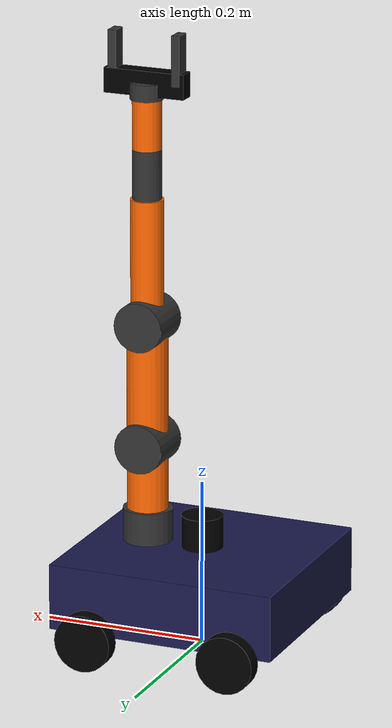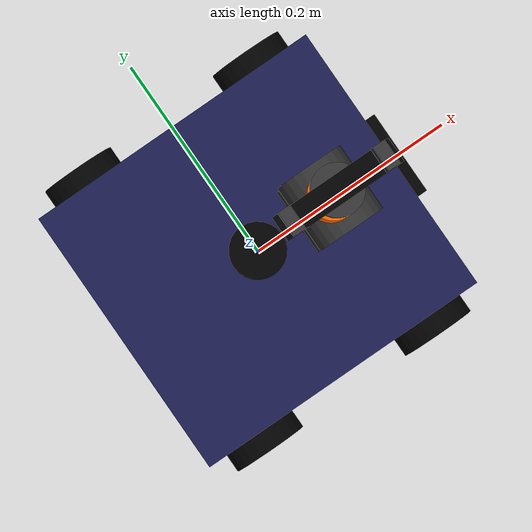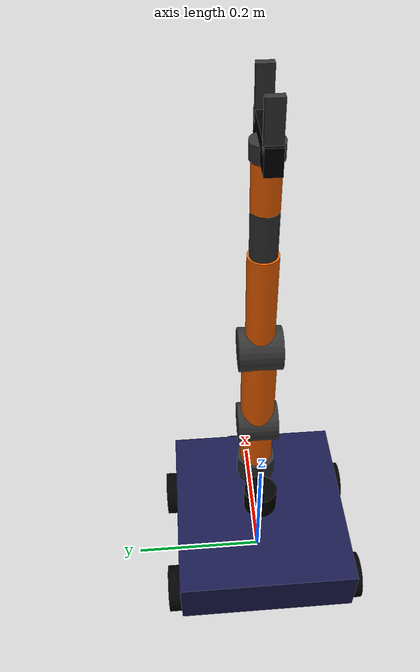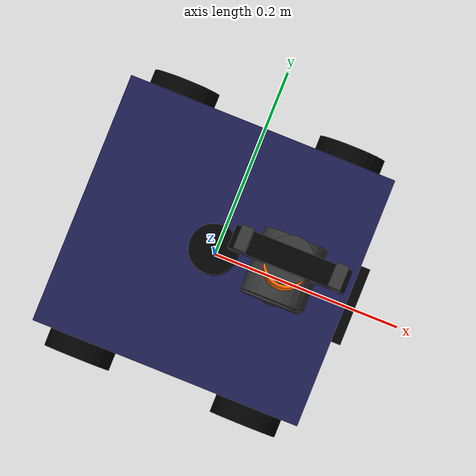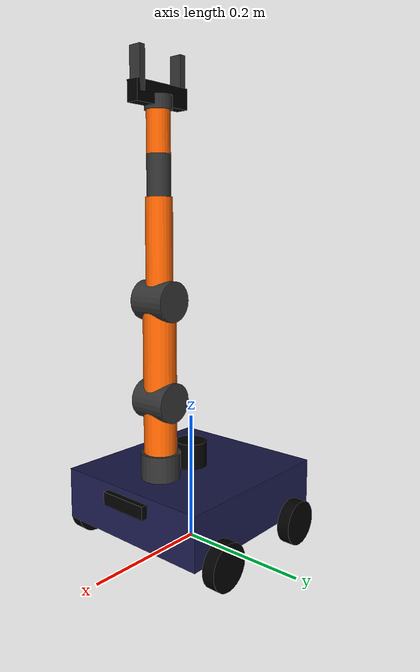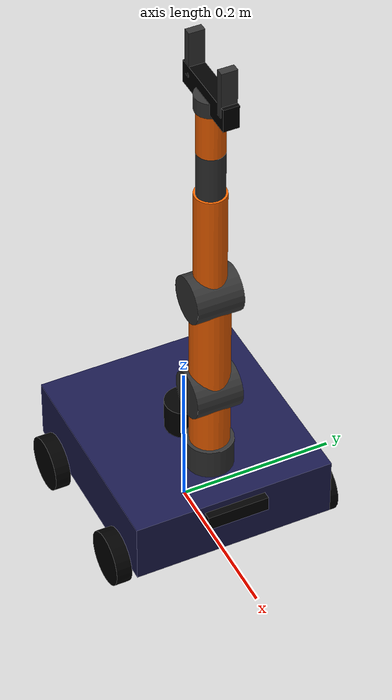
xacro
<?xml version="1.0"?>
<robot xmlns:xacro="http://www.ros.org/wiki/xacro" name="my_mobile_manipulator">
    <xacro:arg name="initial_positions_file" default="initial_positions.yaml" />

    <!-- Import my_mobile_manipulator urdf file -->
    <xacro:include filename="$(find final_assignment_pkg)/urdf/robot.urdf.xacro" />

    <!-- Import control_xacro -->
    <xacro:include filename="my_mobile_manipulator.ros2_control.xacro" />

    <xacro:my_mobile_manipulator_ros2_control name="FakeSystem" initial_positions_file="$(arg initial_positions_file)"/>

</robot>

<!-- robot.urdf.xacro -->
<robot name="my_mobile_manipulator" xmlns:xacro="http://ros.org/wiki/xacro">

  <xacro:property name="base_length" value="0.28"/>
  <xacro:property name="base_width" value="0.26"/>
  <xacro:property name="base_height" value="0.08"/>

  <xacro:property name="wheel_radius" value="0.035"/>
  <xacro:property name="wheel_width" value="0.02"/>

  <xacro:property name="wheel_y_offset" value="${base_width/2 + wheel_width/2}"/>
  <xacro:property name="wheel_x_offset" value="${base_length/2 - 0.05}"/>

  <xacro:property name="arm_radius" value="0.025"/>
  <xacro:property name="joint_radius" value="0.03"/>
  <xacro:property name="link_1_len" value="0.15"/>
  <xacro:property name="link_2_len" value="0.15"/>

  <xacro:macro name="box_inertial" params="m x y z">
    <inertial>
      <mass value="${m}"/>
      <inertia ixx="${m*(y*y+z*z)/12}" ixy="0" ixz="0" iyy="${m*(x*x+z*z)/12}" iyz="0" izz="${m*(x*x+y*y)/12}"/>
    </inertial>
  </xacro:macro>
  <xacro:macro name="cylinder_inertial" params="m r h">
    <inertial>
      <mass value="${m}"/>
      <inertia ixx="${m*(3*r*r+h*h)/12}" ixy="0" ixz="0" iyy="${m*(3*r*r+h*h)/12}" iyz="0" izz="${m*r*r/2}"/>
    </inertial>
  </xacro:macro>

  <material name="industrial_blue"><color rgba="0.1 0.1 0.3 1"/></material>
  <material name="industrial_grey"><color rgba="0.2 0.2 0.2 1"/></material>
  <material name="industrial_orange"><color rgba="1.0 0.4 0.0 1"/></material>
  <material name="black"><color rgba="0 0 0 1"/></material>

  <link name="base_footprint"/>

  <joint name="base_joint" type="fixed">
    <parent link="base_footprint"/>
    <child link="base_link"/>
    <origin xyz="0 0 ${wheel_radius + 0.005}" rpy="0 0 0"/>
  </joint>

  <link name="base_link">
    <visual>
      <origin xyz="0 0 ${base_height/2}" rpy="0 0 0"/>
      <geometry>
        <box size="${base_length} ${base_width} ${base_height}"/>
      </geometry>
      <material name="industrial_blue"/>
    </visual>
    <collision>
      <origin xyz="0 0 ${base_height/2}" rpy="0 0 0"/>
      <geometry>
        <box size="${base_length} ${base_width} ${base_height}"/>
      </geometry>
    </collision>
    <xacro:box_inertial m="50.0" x="${base_length}" y="${base_width}" z="${base_height}"/>
  </link>

  <xacro:macro name="drive_wheel" params="prefix suffix x_pos y_pos">
    <link name="${prefix}_${suffix}_wheel">
      <visual>
        <origin xyz="0 0 0" rpy="${pi/2} 0 0"/>
        <geometry><cylinder radius="${wheel_radius}" length="${wheel_width}"/></geometry>
        <material name="black"/>
      </visual>
      <collision>
        <origin xyz="0 0 0" rpy="${pi/2} 0 0"/>
        <geometry><cylinder radius="${wheel_radius}" length="${wheel_width}"/></geometry>
      </collision>
      <xacro:cylinder_inertial m="2.0" r="${wheel_radius}" h="${wheel_width}"/>
    </link>

    <joint name="${prefix}_${suffix}_wheel_joint" type="continuous">
      <parent link="base_link"/>
      <child link="${prefix}_${suffix}_wheel"/>
      <origin xyz="${x_pos} ${y_pos} -0.005" rpy="0 0 0"/>
      <axis xyz="0 1 0"/>
      <dynamics damping="10.0" friction="2.0"/>
    </joint>

    <gazebo reference="${prefix}_${suffix}_wheel">
        <material>Gazebo/FlatBlack</material>
        <mu1>2000.0</mu1> <mu2>2000.0</mu2>
        <kp>10000000.0</kp> <kd>1.0</kd>
        <fdir1>1 0 0</fdir1>
    </gazebo>
  </xacro:macro>

  <xacro:drive_wheel prefix="front" suffix="left"  x_pos="${wheel_x_offset}"  y_pos="${wheel_y_offset}"/>
  <xacro:drive_wheel prefix="front" suffix="right" x_pos="${wheel_x_offset}"  y_pos="-${wheel_y_offset}"/>

  <xacro:macro name="caster_wheel" params="suffix y_pos">
    <link name="rear_${suffix}_caster">
      <visual>
        <origin xyz="0 0 0" rpy="${pi/2} 0 0"/>
        <geometry><cylinder radius="${wheel_radius}" length="${wheel_width}"/></geometry>
        <material name="black"/>
      </visual>
      <collision>
        <origin xyz="0 0 0" rpy="${pi/2} 0 0"/>
        <geometry><cylinder radius="${wheel_radius}" length="${wheel_width}"/></geometry>
      </collision>
      <xacro:cylinder_inertial m="0.5" r="${wheel_radius}" h="${wheel_width}"/>
    </link>

    <joint name="rear_${suffix}_caster_joint" type="fixed">
      <parent link="base_link"/>
      <child link="rear_${suffix}_caster"/>
      <origin xyz="-${wheel_x_offset} ${y_pos} -0.005" rpy="0 0 0"/>
    </joint>

    <gazebo reference="rear_${suffix}_caster">
      <material>Gazebo/FlatBlack</material>
      <mu1>0.0</mu1> <mu2>0.0</mu2>
    </gazebo>
  </xacro:macro>

  <xacro:caster_wheel suffix="left" y_pos="${wheel_y_offset}"/>
  <xacro:caster_wheel suffix="right" y_pos="-${wheel_y_offset}"/>

  <link name="arm_base_link">
    <visual><geometry><cylinder radius="${joint_radius}" length="0.04"/></geometry><material name="industrial_grey"/></visual>
    <collision><geometry><cylinder radius="${joint_radius}" length="0.04"/></geometry></collision>
    <xacro:cylinder_inertial m="0.5" r="${joint_radius}" h="0.04"/>
  </link>
  <joint name="arm_base_joint" type="fixed">
      <parent link="base_link"/>
      <child link="arm_base_link"/>
      <origin xyz="${base_length/4} 0 ${base_height + 0.02}" rpy="0 0 0"/>
  </joint>

  <joint name="arm_joint_1" type="revolute">
    <parent link="arm_base_link"/>
    <child link="arm_link_1"/>
    <origin xyz="0 0 0.02" rpy="0 0 0"/>
    <axis xyz="0 0 1"/>
    <limit lower="-3.14" upper="3.14" effort="10.0" velocity="1.0"/>
  </joint>
  <link name="arm_link_1">
    <visual><origin xyz="0 0 0.04"/><geometry><cylinder radius="${arm_radius}" length="0.08"/></geometry><material name="industrial_orange"/></visual>
    <collision><origin xyz="0 0 0.04"/><geometry><cylinder radius="${arm_radius}" length="0.08"/></geometry></collision>
    <visual><origin xyz="0 0 0.08" rpy="${pi/2} 0 0"/><geometry><cylinder radius="${joint_radius}" length="0.06"/></geometry><material name="industrial_grey"/></visual>
    <xacro:cylinder_inertial m="0.5" r="${arm_radius}" h="0.08"/>
  </link>

  <joint name="arm_joint_2" type="revolute">
    <parent link="arm_link_1"/><child link="arm_link_2"/><origin xyz="0 0 0.08"/><axis xyz="0 1 0"/><limit lower="-1.57" upper="1.57" effort="10.0" velocity="1.0"/>
  </joint>
  <link name="arm_link_2">
    <visual><origin xyz="0 0 ${link_1_len/2}"/><geometry><cylinder radius="${arm_radius}" length="${link_1_len}"/></geometry><material name="industrial_orange"/></visual>
    <collision><origin xyz="0 0 ${link_1_len/2}"/><geometry><cylinder radius="${arm_radius}" length="${link_1_len}"/></geometry></collision>
    <visual><origin xyz="0 0 ${link_1_len}" rpy="${pi/2} 0 0"/><geometry><cylinder radius="${joint_radius}" length="0.06"/></geometry><material name="industrial_grey"/></visual>
    <xacro:cylinder_inertial m="0.4" r="${arm_radius}" h="${link_1_len}"/>
  </link>

  <joint name="arm_joint_3" type="revolute">
    <parent link="arm_link_2"/><child link="arm_link_3"/><origin xyz="0 0 ${link_1_len}"/><axis xyz="0 1 0"/><limit lower="-2.5" upper="2.5" effort="10.0" velocity="1.0"/>
  </joint>
  <link name="arm_link_3">
    <visual><origin xyz="0 0 ${link_2_len/2}"/><geometry><cylinder radius="${arm_radius*0.8}" length="${link_2_len}"/></geometry><material name="industrial_orange"/></visual>
    <collision><origin xyz="0 0 ${link_2_len/2}"/><geometry><cylinder radius="${arm_radius*0.8}" length="${link_2_len}"/></geometry></collision>
    <xacro:cylinder_inertial m="0.3" r="${arm_radius*0.8}" h="${link_2_len}"/>
  </link>

  <joint name="arm_joint_4" type="revolute">
    <parent link="arm_link_3"/><child link="arm_link_4"/><origin xyz="0 0 ${link_2_len}"/><axis xyz="1 0 0"/><limit lower="-3.14" upper="3.14" effort="5.0" velocity="1.0"/>
  </joint>
  <link name="arm_link_4">
    <visual><origin xyz="0 0 0.03"/><geometry><cylinder radius="${arm_radius*0.7}" length="0.06"/></geometry><material name="industrial_grey"/></visual>
    <collision><origin xyz="0 0 0.03"/><geometry><cylinder radius="${arm_radius*0.7}" length="0.06"/></geometry></collision>
    <xacro:cylinder_inertial m="0.1" r="${arm_radius*0.7}" h="0.06"/>
  </link>

  <joint name="arm_joint_5" type="revolute">
    <parent link="arm_link_4"/><child link="arm_link_5"/><origin xyz="0 0 0.06"/><axis xyz="0 1 0"/><limit lower="-1.57" upper="1.57" effort="5.0" velocity="1.0"/>
  </joint>
  <link name="arm_link_5">
    <visual><origin xyz="0 0 0.03"/><geometry><cylinder radius="${arm_radius*0.7}" length="0.06"/></geometry><material name="industrial_orange"/></visual>
    <collision><origin xyz="0 0 0.03"/><geometry><cylinder radius="${arm_radius*0.7}" length="0.06"/></geometry></collision>
    <xacro:cylinder_inertial m="0.1" r="${arm_radius*0.7}" h="0.06"/>
  </link>

  <joint name="arm_joint_6" type="revolute">
    <parent link="arm_link_5"/><child link="arm_link_6"/><origin xyz="0 0 0.06"/><axis xyz="1 0 0"/><limit lower="-3.14" upper="3.14" effort="5.0" velocity="1.0"/>
  </joint>
  <link name="arm_link_6">
    <visual><origin xyz="0 0 0.01"/><geometry><cylinder radius="0.02" length="0.02"/></geometry><material name="industrial_grey"/></visual>
    <collision><origin xyz="0 0 0.01"/><geometry><cylinder radius="0.02" length="0.02"/></geometry></collision>
    <xacro:cylinder_inertial m="0.1" r="0.02" h="0.02"/>
  </link>

  <link name="gripper_base_link">
    <visual><geometry><box size="0.02 0.10 0.03"/></geometry><material name="black"/></visual>
    <collision><geometry><box size="0.02 0.10 0.03"/></geometry></collision>
    <xacro:box_inertial m="0.1" x="0.02" y="0.10" z="0.03"/>
  </link>
  <joint name="gripper_base_joint" type="fixed">
    <parent link="arm_link_6"/>
    <child link="gripper_base_link"/>
    <origin xyz="0 0 0.02" rpy="0 0 1.5708"/>
  </joint>

  <link name="gripper_left_finger">
    <visual><origin xyz="0 0 0.03"/><geometry><box size="0.02 0.01 0.06"/></geometry><material name="industrial_grey"/></visual>
    <collision><origin xyz="0 0 0.03"/><geometry><box size="0.02 0.01 0.06"/></geometry></collision>
    <xacro:box_inertial m="0.05" x="0.02" y="0.01" z="0.06"/>
  </link>
  <joint name="finger_joint_1" type="prismatic">
    <parent link="gripper_base_link"/>
    <child link="gripper_left_finger"/>
    <origin xyz="0 0.04 0" rpy="0 0 0"/>
    <axis xyz="0 1 0"/>
    <limit lower="-0.04" upper="0.0" effort="10.0" velocity="0.5"/>
  </joint>

  <link name="gripper_right_finger">
    <visual><origin xyz="0 0 0.03"/><geometry><box size="0.02 0.01 0.06"/></geometry><material name="industrial_grey"/></visual>
    <collision><origin xyz="0 0 0.03"/><geometry><box size="0.02 0.01 0.06"/></geometry></collision>
    <xacro:box_inertial m="0.05" x="0.02" y="0.01" z="0.06"/>
  </link>
  <joint name="finger_joint_2" type="prismatic">
    <parent link="gripper_base_link"/>
    <child link="gripper_right_finger"/>
    <origin xyz="0 -0.04 0" rpy="0 0 0"/>
    <axis xyz="0 1 0"/>
    <limit lower="0.0" upper="0.04" effort="10.0" velocity="0.5"/>
  </joint>

  <link name="laser_link">
    <visual><geometry><cylinder radius="0.025" length="0.04"/></geometry><material name="black"/></visual>
    <collision><geometry><cylinder radius="0.025" length="0.04"/></geometry></collision>
    <xacro:cylinder_inertial m="0.1" r="0.025" h="0.04"/>
  </link>
  <joint name="laser_joint" type="fixed">
    <parent link="base_link"/>
    <child link="laser_link"/>
    <origin xyz="0 0 ${base_height + 0.02}" rpy="0 0 0"/>
  </joint>

  <link name="imu_link"/><joint name="imu_joint" type="fixed"><parent link="base_link"/><child link="imu_link"/><origin xyz="0 0 0"/></joint>

  <link name="camera_link">
    <visual><geometry><box size="0.02 0.08 0.02"/></geometry><material name="black"/></visual>
    <collision><geometry><box size="0.02 0.08 0.02"/></geometry></collision>
    <xacro:box_inertial m="0.05" x="0.02" y="0.08" z="0.02"/>
  </link>
  <joint name="camera_joint" type="fixed">
    <parent link="base_link"/>
    <child link="camera_link"/>
    <origin xyz="${base_length/2} 0 ${base_height - 0.02}" rpy="0 0 0"/>
  </joint>
  <link name="camera_depth_frame"/>
  <joint name="camera_optical_joint" type="fixed"><parent link="camera_link"/><child link="camera_depth_frame"/><origin xyz="0 0 0" rpy="${-pi/2} 0 ${-pi/2}"/></joint>

  <gazebo reference="base_link"><material>Gazebo/DarkGrey</material></gazebo>
  <gazebo reference="arm_base_link"><material>Gazebo/DarkGrey</material></gazebo>
  <gazebo reference="arm_link_1"><material>Gazebo/Orange</material></gazebo>
  <gazebo reference="arm_link_2"><material>Gazebo/Orange</material></gazebo>
  <gazebo reference="arm_link_3"><material>Gazebo/Orange</material></gazebo>
  <gazebo reference="arm_link_4"><material>Gazebo/DarkGrey</material></gazebo>
  <gazebo reference="arm_link_5"><material>Gazebo/Orange</material></gazebo>
  <gazebo reference="arm_link_6"><material>Gazebo/DarkGrey</material></gazebo>
  <gazebo reference="gripper_base_link"><material>Gazebo/FlatBlack</material></gazebo>
  <gazebo reference="gripper_left_finger"><material>Gazebo/Grey</material></gazebo>
  <gazebo reference="gripper_right_finger"><material>Gazebo/Grey</material></gazebo>

  <ros2_control name="GazeboSystem" type="system">
    <hardware><plugin>gazebo_ros2_control/GazeboSystem</plugin></hardware>
    <joint name="arm_joint_1"><command_interface name="position"/><state_interface name="position"/><state_interface name="velocity"/></joint>
    <joint name="arm_joint_2"><command_interface name="position"/><state_interface name="position"/><state_interface name="velocity"/></joint>
    <joint name="arm_joint_3"><command_interface name="position"/><state_interface name="position"/><state_interface name="velocity"/></joint>
    <joint name="arm_joint_4"><command_interface name="position"/><state_interface name="position"/><state_interface name="velocity"/></joint>
    <joint name="arm_joint_5"><command_interface name="position"/><state_interface name="position"/><state_interface name="velocity"/></joint>
    <joint name="arm_joint_6"><command_interface name="position"/><state_interface name="position"/><state_interface name="velocity"/></joint>
    <joint name="finger_joint_1"><command_interface name="position"/><state_interface name="position"/><state_interface name="velocity"/></joint>
    <joint name="finger_joint_2"><command_interface name="position"/><state_interface name="position"/><state_interface name="velocity"/></joint>

    <joint name="front_left_wheel_joint"><state_interface name="position"/><state_interface name="velocity"/></joint>
    <joint name="front_right_wheel_joint"><state_interface name="position"/><state_interface name="velocity"/></joint>
  </ros2_control>

  <gazebo>
    <plugin name="gazebo_ros2_control" filename="libgazebo_ros2_control.so">
      <parameters>$(find final_assignment_pkg)/config/controllers.yaml</parameters>
    </plugin>
  </gazebo>

  <gazebo>
    <plugin name="diff_drive" filename="libgazebo_ros_diff_drive.so">
      <ros><namespace>/</namespace></ros>
      <left_joint>front_left_wheel_joint</left_joint>
      <right_joint>front_right_wheel_joint</right_joint>

      <wheel_separation>${wheel_y_offset * 2}</wheel_separation>
      <wheel_diameter>${2*wheel_radius}</wheel_diameter>

      <max_wheel_torque>200</max_wheel_torque>
      <max_wheel_acceleration>1.0</max_wheel_acceleration>

      <publish_odom>true</publish_odom>
      <publish_odom_tf>true</publish_odom_tf> <publish_wheel_tf>false</publish_wheel_tf> <odometry_frame>odom</odometry_frame>
      <robot_base_frame>base_footprint</robot_base_frame>
    </plugin>
  </gazebo>

  <gazebo reference="laser_link">
    <sensor name="lidar" type="ray">
      <always_on>true</always_on><visualize>true</visualize><update_rate>10</update_rate>
      <ray>
        <scan><horizontal><samples>360</samples><resolution>1</resolution><min_angle>-3.14</min_angle><max_angle>3.14</max_angle></horizontal></scan>
        <range><min>0.12</min><max>8.0</max><resolution>0.015</resolution></range>
      </ray>
      <plugin name="scan" filename="libgazebo_ros_ray_sensor.so">
        <ros><remapping>~/out:=scan</remapping></ros>
        <output_type>sensor_msgs/LaserScan</output_type>
        <frame_name>laser_link</frame_name>
      </plugin>
    </sensor>
  </gazebo>

</robot>
